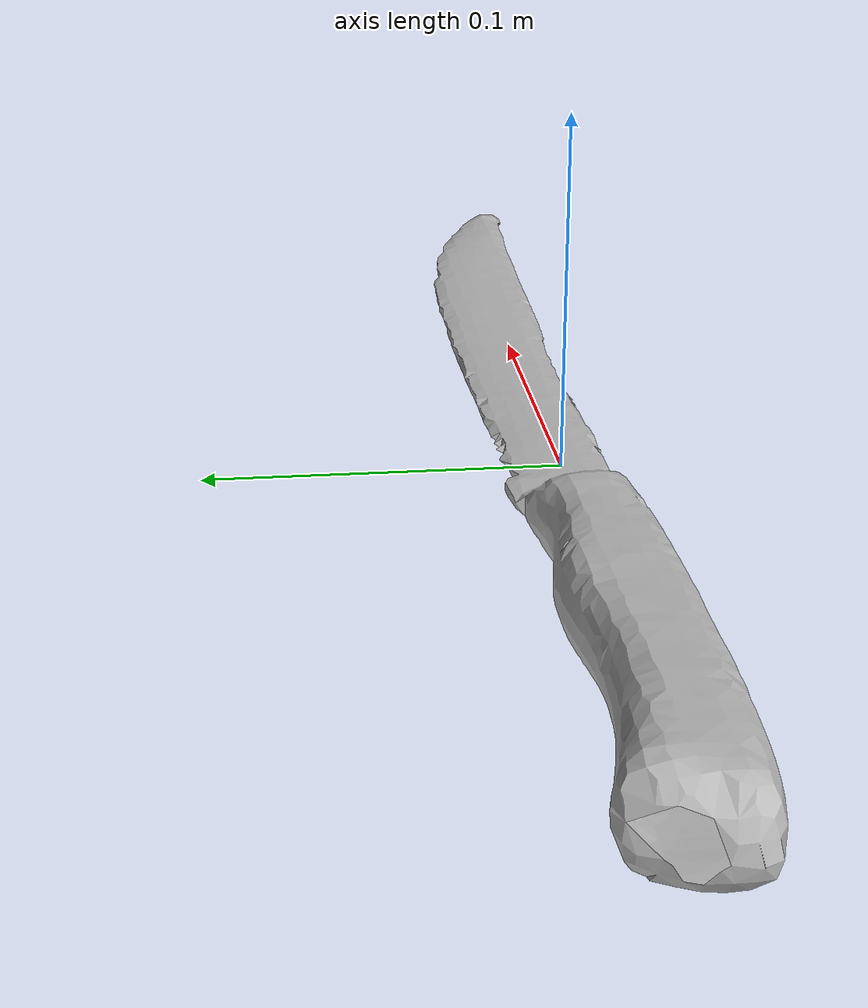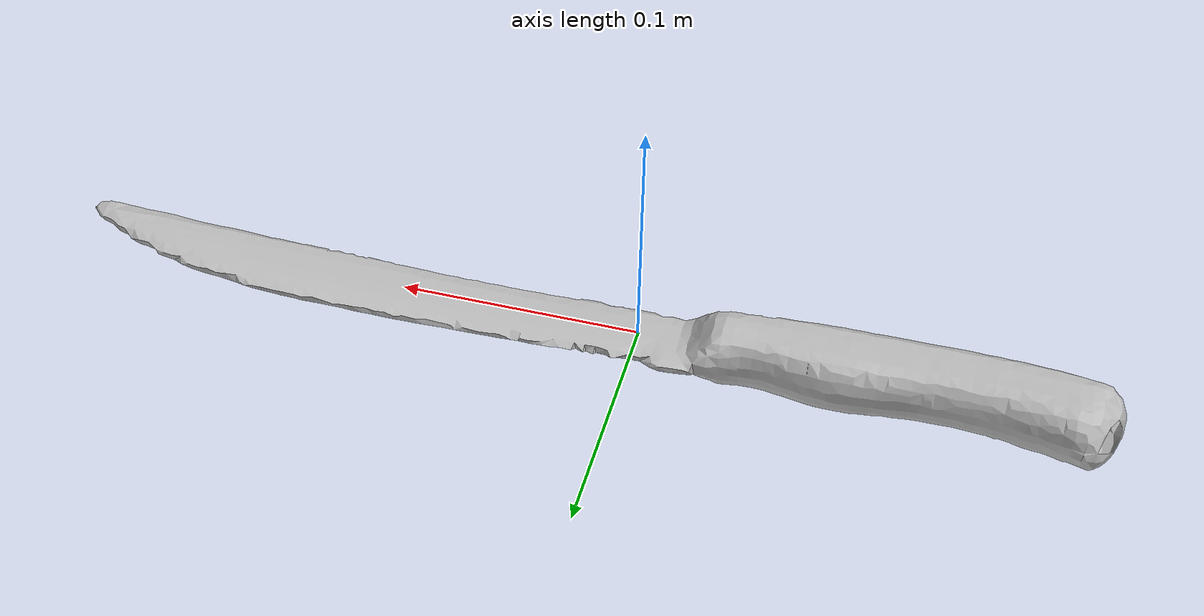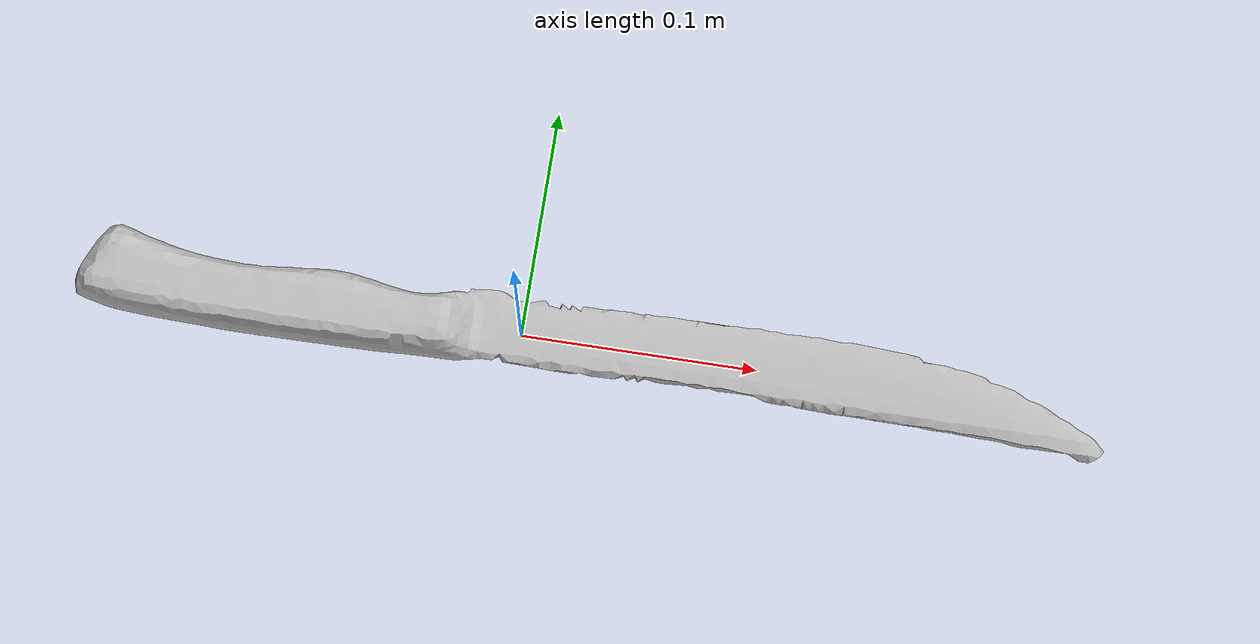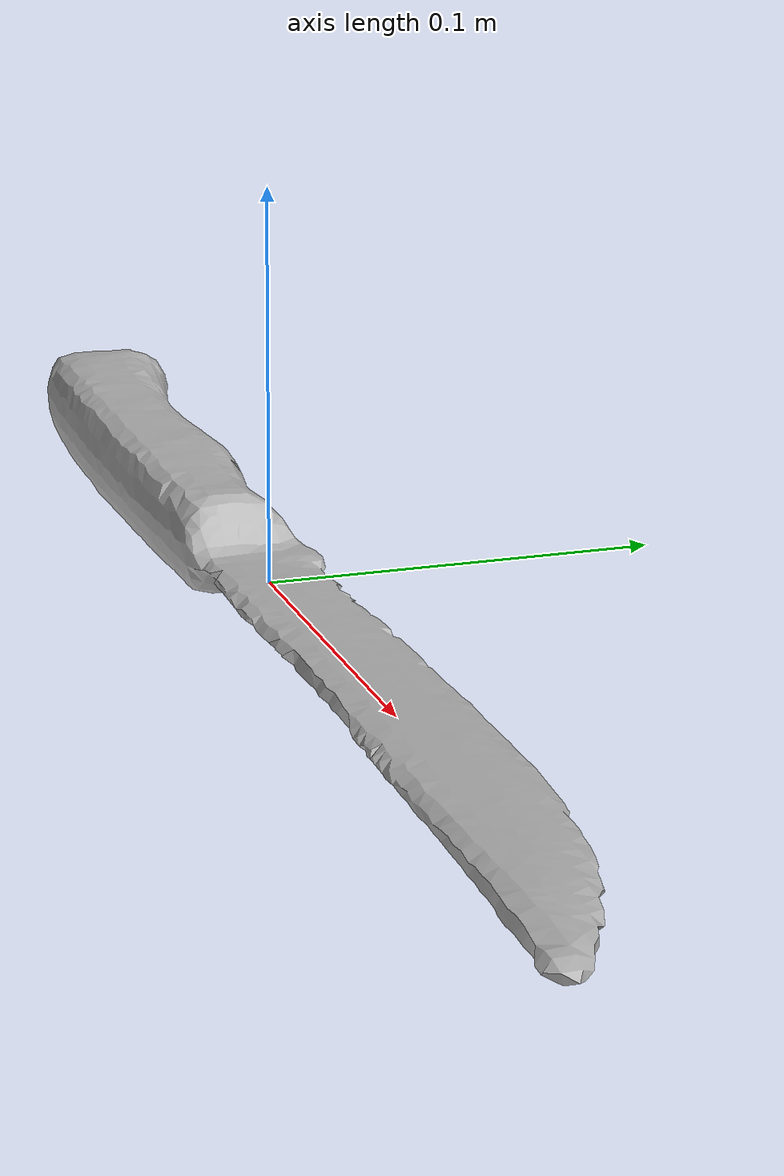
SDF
<?xml version='1.0'?>
<sdf version='1.6'>
    <model name='knife'>
        <static>false</static>
        <pose>0 0 0 0 0 0</pose>
        <link name='link'>

            <sensor name="tool_contact_sensor" type="contact">
              <always_on>true</always_on>
              <update_rate>30.0</update_rate>
              <contact>
                <collision name="fix">collision</collision>
              </contact>
              <plugin name="tool_bumper" filename="libgazebo_ros_bumper.so">
                <bumperTopicName>tool_contact_sensor_state</bumperTopicName>
                <frameName>world</frameName>
              </plugin>
            </sensor>

            <collision name='collision'>
                <geometry>
                    <mesh>
                        <uri>model://knife/model.dae</uri>
                    </mesh>
                </geometry>
                <surface>
                    <friction>
                        <ode>
                            <mu>0.5</mu>
                            <mu2>0.5</mu2>
                        </ode>
                    </friction>
                </surface>
            </collision>
            <visual name='visual'>
                <geometry>
                    <mesh>
                        <uri>model://knife/model.dae</uri>
                    </mesh>
                </geometry>
            </visual>
        </link>
    </model>
</sdf>
